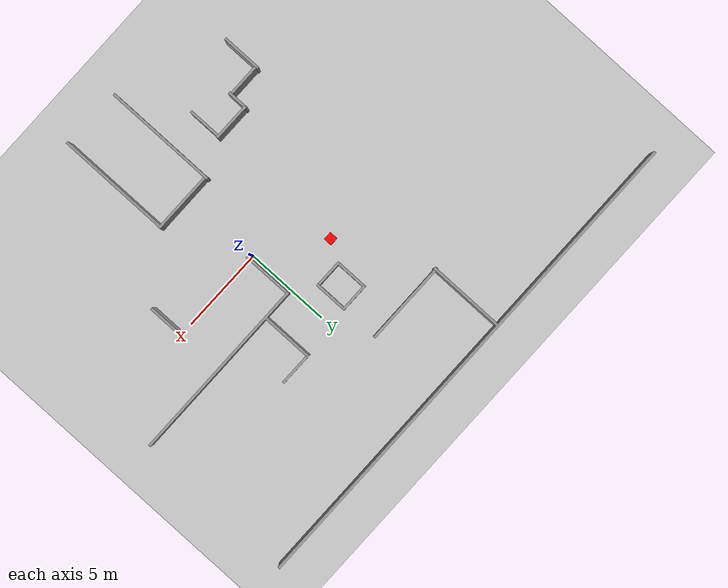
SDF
<sdf version="1.7">
 <world name="default">
  <model name="ground_plane">
   <static>1</static>
   <link name="link">
    <collision name="collision">
     <geometry><plane><normal>0 0 1</normal><size>100 100</size></plane></geometry>
     <surface>
      <contact><collide_bitmask>65535</collide_bitmask></contact>
      <friction><ode><mu>100</mu><mu2>50</mu2></ode></friction>
     </surface>
    </collision>
    <visual name="visual">
     <cast_shadows>0</cast_shadows>
     <geometry><plane><normal>0 0 1</normal><size>100 100</size></plane></geometry>
     <material>
      <script><uri>file://media/materials/scripts/gazebo.material</uri><name>Gazebo/Grey</name></script>
     </material>
    </visual>
   </link>
  </model>
  <model name="target_box">
   <pose>-3.5 2.5 0.5 0 0 0</pose>
   <link name="link">
    <collision name="collision"><geometry><box><size>0.5 0.5 0.5</size></box></geometry></collision>
    <visual name="visual">
     <geometry><box><size>0.5 0.5 0.5</size></box></geometry>
     <material><ambient>1 0 0 1</ambient><diffuse>1 0 0 1</diffuse><specular>0.5 0.5 0.5 1</specular></material>
    </visual>
   </link>
  </model>
  <model name="newwoorld">
   <link name="Wall_101">
    <pose>-0.994043 4.5629 0 0 -0 3.14159</pose>
    <visual name="Wall_101_Visual">
     <pose>0 0 1.25 0 -0 0</pose>
     <geometry><box><size>1.75 0.15 2.5</size></box></geometry>
     <material>
      <script><uri>file://media/materials/scripts/gazebo.material</uri><name>Gazebo/Grey</name></script>
      <ambient>1 1 1 1</ambient>
      <shader type="pixel"/>
     </material>
     <meta><layer>0</layer></meta>
    </visual>
    <collision name="Wall_101_Collision">
     <pose>0 0 1.25 0 -0 0</pose>
     <geometry><box><size>1.75 0.15 2.5</size></box></geometry>
     <surface>
      <friction>
       <ode><mu>1</mu><mu2>1</mu2><fdir1>0 0 0</fdir1><slip1>0</slip1><slip2>0</slip2></ode>
       <torsional>
        <coefficient>1</coefficient>
        <patch_radius>0</patch_radius>
        <surface_radius>0</surface_radius>
        <use_patch_radius>1</use_patch_radius>
        <ode><slip>0</slip></ode>
       </torsional>
      </friction>
      <bounce><restitution_coefficient>0</restitution_coefficient><threshold>1e+06</threshold></bounce>
      <contact>
       <collide_without_contact>0</collide_without_contact>
       <collide_without_contact_bitmask>1</collide_without_contact_bitmask>
       <collide_bitmask>1</collide_bitmask>
       <ode>
        <soft_cfm>0</soft_cfm>
        <soft_erp>0.2</soft_erp>
        <kp>1e+13</kp>
        <kd>1</kd>
        <max_vel>0.01</max_vel>
        <min_depth>0</min_depth>
       </ode>
       <bullet>
        <split_impulse>1</split_impulse>
        <split_impulse_penetration_threshold>-0.01</split_impulse_penetration_threshold>
        <soft_cfm>0</soft_cfm>
        <soft_erp>0.2</soft_erp>
        <kp>1e+13</kp>
        <kd>1</kd>
       </bullet>
      </contact>
     </surface>
    </collision>
   </link>
   <link name="Wall_104">
    <pose>-0.194043 3.6379 0 0 0 -1.5708</pose>
    <visual name="Wall_104_Visual">
     <pose>0 0 1.25 0 -0 0</pose>
     <geometry><box><size>2 0.15 2.5</size></box></geometry>
     <material>
      <script><uri>file://media/materials/scripts/gazebo.material</uri><name>Gazebo/Grey</name></script>
      <ambient>1 1 1 1</ambient>
      <shader type="pixel"/>
     </material>
     <meta><layer>0</layer></meta>
    </visual>
    <collision name="Wall_104_Collision">
     <pose>0 0 1.25 0 -0 0</pose>
     <geometry><box><size>2 0.15 2.5</size></box></geometry>
     <surface>
      <friction>
       <ode><mu>1</mu><mu2>1</mu2><fdir1>0 0 0</fdir1><slip1>0</slip1><slip2>0</slip2></ode>
       <torsional>
        <coefficient>1</coefficient>
        <patch_radius>0</patch_radius>
        <surface_radius>0</surface_radius>
        <use_patch_radius>1</use_patch_radius>
        <ode><slip>0</slip></ode>
       </torsional>
      </friction>
      <bounce><restitution_coefficient>0</restitution_coefficient><threshold>1e+06</threshold></bounce>
      <contact>
       <collide_without_contact>0</collide_without_contact>
       <collide_without_contact_bitmask>1</collide_without_contact_bitmask>
       <collide_bitmask>1</collide_bitmask>
       <ode>
        <soft_cfm>0</soft_cfm>
        <soft_erp>0.2</soft_erp>
        <kp>1e+13</kp>
        <kd>1</kd>
        <max_vel>0.01</max_vel>
        <min_depth>0</min_depth>
       </ode>
       <bullet>
        <split_impulse>1</split_impulse>
        <split_impulse_penetration_threshold>-0.01</split_impulse_penetration_threshold>
        <soft_cfm>0</soft_cfm>
        <soft_erp>0.2</soft_erp>
        <kp>1e+13</kp>
        <kd>1</kd>
       </bullet>
      </contact>
     </surface>
    </collision>
   </link>
   <link name="Wall_105">
    <pose>-0.994043 2.7129 0 0 -0 3.14159</pose>
    <visual name="Wall_105_Visual">
     <pose>0 0 1.25 0 -0 0</pose>
     <geometry><box><size>1.75 0.15 2.5</size></box></geometry>
     <material>
      <script><uri>file://media/materials/scripts/gazebo.material</uri><name>Gazebo/Grey</name></script>
      <ambient>1 1 1 1</ambient>
      <shader type="pixel"/>
     </material>
     <meta><layer>0</layer></meta>
    </visual>
    <collision name="Wall_105_Collision">
     <pose>0 0 1.25 0 -0 0</pose>
     <geometry><box><size>1.75 0.15 2.5</size></box></geometry>
     <surface>
      <friction>
       <ode><mu>1</mu><mu2>1</mu2><fdir1>0 0 0</fdir1><slip1>0</slip1><slip2>0</slip2></ode>
       <torsional>
        <coefficient>1</coefficient>
        <patch_radius>0</patch_radius>
        <surface_radius>0</surface_radius>
        <use_patch_radius>1</use_patch_radius>
        <ode><slip>0</slip></ode>
       </torsional>
      </friction>
      <bounce><restitution_coefficient>0</restitution_coefficient><threshold>1e+06</threshold></bounce>
      <contact>
       <collide_without_contact>0</collide_without_contact>
       <collide_without_contact_bitmask>1</collide_without_contact_bitmask>
       <collide_bitmask>1</collide_bitmask>
       <ode>
        <soft_cfm>0</soft_cfm>
        <soft_erp>0.2</soft_erp>
        <kp>1e+13</kp>
        <kd>1</kd>
        <max_vel>0.01</max_vel>
        <min_depth>0</min_depth>
       </ode>
       <bullet>
        <split_impulse>1</split_impulse>
        <split_impulse_penetration_threshold>-0.01</split_impulse_penetration_threshold>
        <soft_cfm>0</soft_cfm>
        <soft_erp>0.2</soft_erp>
        <kp>1e+13</kp>
        <kd>1</kd>
       </bullet>
      </contact>
     </surface>
    </collision>
   </link>
   <link name="Wall_106">
    <pose>-1.79404 3.6379 0 0 -0 1.5708</pose>
    <visual name="Wall_106_Visual">
     <pose>0 0 1.25 0 -0 0</pose>
     <geometry><box><size>2 0.15 2.5</size></box></geometry>
     <material>
      <script><uri>file://media/materials/scripts/gazebo.material</uri><name>Gazebo/Grey</name></script>
      <ambient>1 1 1 1</ambient>
      <shader type="pixel"/>
     </material>
     <meta><layer>0</layer></meta>
    </visual>
    <collision name="Wall_106_Collision">
     <pose>0 0 1.25 0 -0 0</pose>
     <geometry><box><size>2 0.15 2.5</size></box></geometry>
     <surface>
      <friction>
       <ode><mu>1</mu><mu2>1</mu2><fdir1>0 0 0</fdir1><slip1>0</slip1><slip2>0</slip2></ode>
       <torsional>
        <coefficient>1</coefficient>
        <patch_radius>0</patch_radius>
        <surface_radius>0</surface_radius>
        <use_patch_radius>1</use_patch_radius>
        <ode><slip>0</slip></ode>
       </torsional>
      </friction>
      <bounce><restitution_coefficient>0</restitution_coefficient><threshold>1e+06</threshold></bounce>
      <contact>
       <collide_without_contact>0</collide_without_contact>
       <collide_without_contact_bitmask>1</collide_without_contact_bitmask>
       <collide_bitmask>1</collide_bitmask>
       <ode>
        <soft_cfm>0</soft_cfm>
        <soft_erp>0.2</soft_erp>
        <kp>1e+13</kp>
        <kd>1</kd>
        <max_vel>0.01</max_vel>
        <min_depth>0</min_depth>
       </ode>
       <bullet>
        <split_impulse>1</split_impulse>
        <split_impulse_penetration_threshold>-0.01</split_impulse_penetration_threshold>
        <soft_cfm>0</soft_cfm>
        <soft_erp>0.2</soft_erp>
        <kp>1e+13</kp>
        <kd>1</kd>
       </bullet>
      </contact>
     </surface>
    </collision>
   </link>
   <link name="Wall_124">
    <pose>6.64457 -2.03412 0 0 0 -1.5708</pose>
    <visual name="Wall_124_Visual">
     <pose>0 0 1.25 0 -0 0</pose>
     <geometry><box><size>2 0.15 2.5</size></box></geometry>
     <material>
      <script><uri>file://media/materials/scripts/gazebo.material</uri><name>Gazebo/Grey</name></script>
      <ambient>1 1 1 1</ambient>
      <shader type="pixel"/>
     </material>
     <meta><layer>0</layer></meta>
    </visual>
    <collision name="Wall_124_Collision">
     <pose>0 0 1.25 0 -0 0</pose>
     <geometry><box><size>2 0.15 2.5</size></box></geometry>
     <surface>
      <friction>
       <ode><mu>1</mu><mu2>1</mu2><fdir1>0 0 0</fdir1><slip1>0</slip1><slip2>0</slip2></ode>
       <torsional>
        <coefficient>1</coefficient>
        <patch_radius>0</patch_radius>
        <surface_radius>0</surface_radius>
        <use_patch_radius>1</use_patch_radius>
        <ode><slip>0</slip></ode>
       </torsional>
      </friction>
      <bounce><restitution_coefficient>0</restitution_coefficient><threshold>1e+06</threshold></bounce>
      <contact>
       <collide_without_contact>0</collide_without_contact>
       <collide_without_contact_bitmask>1</collide_without_contact_bitmask>
       <collide_bitmask>1</collide_bitmask>
       <ode>
        <soft_cfm>0</soft_cfm>
        <soft_erp>0.2</soft_erp>
        <kp>1e+13</kp>
        <kd>1</kd>
        <max_vel>0.01</max_vel>
        <min_depth>0</min_depth>
       </ode>
       <bullet>
        <split_impulse>1</split_impulse>
        <split_impulse_penetration_threshold>-0.01</split_impulse_penetration_threshold>
        <soft_cfm>0</soft_cfm>
        <soft_erp>0.2</soft_erp>
        <kp>1e+13</kp>
        <kd>1</kd>
       </bullet>
      </contact>
     </surface>
    </collision>
   </link>
   <link name="Wall_137">
    <pose>-4.6097 -7.02476 0 0 -0 1.5708</pose>
    <visual name="Wall_137_Visual">
     <pose>0 0 1.25 0 -0 0</pose>
     <geometry><box><size>1.25 0.15 2.5</size></box></geometry>
     <material>
      <script><uri>file://media/materials/scripts/gazebo.material</uri><name>Gazebo/Grey</name></script>
      <ambient>1 1 1 1</ambient>
      <shader type="pixel"/>
     </material>
     <meta><layer>0</layer></meta>
    </visual>
    <collision name="Wall_137_Collision">
     <pose>0 0 1.25 0 -0 0</pose>
     <geometry><box><size>1.25 0.15 2.5</size></box></geometry>
     <surface>
      <friction>
       <ode><mu>1</mu><mu2>1</mu2><fdir1>0 0 0</fdir1><slip1>0</slip1><slip2>0</slip2></ode>
       <torsional>
        <coefficient>1</coefficient>
        <patch_radius>0</patch_radius>
        <surface_radius>0</surface_radius>
        <use_patch_radius>1</use_patch_radius>
        <ode><slip>0</slip></ode>
       </torsional>
      </friction>
      <bounce><restitution_coefficient>0</restitution_coefficient><threshold>1e+06</threshold></bounce>
      <contact>
       <collide_without_contact>0</collide_without_contact>
       <collide_without_contact_bitmask>1</collide_without_contact_bitmask>
       <collide_bitmask>1</collide_bitmask>
       <ode>
        <soft_cfm>0</soft_cfm>
        <soft_erp>0.2</soft_erp>
        <kp>1e+13</kp>
        <kd>1</kd>
        <max_vel>0.01</max_vel>
        <min_depth>0</min_depth>
       </ode>
       <bullet>
        <split_impulse>1</split_impulse>
        <split_impulse_penetration_threshold>-0.01</split_impulse_penetration_threshold>
        <soft_cfm>0</soft_cfm>
        <soft_erp>0.2</soft_erp>
        <kp>1e+13</kp>
        <kd>1</kd>
       </bullet>
      </contact>
     </surface>
    </collision>
   </link>
   <link name="Wall_138">
    <pose>-3.52263 -6.50901 0 0 -0 0</pose>
    <visual name="Wall_138_Visual">
     <pose>0 0 1.25 0 -0 0</pose>
     <geometry><box><size>2.25 0.15 2.5</size></box></geometry>
     <material>
      <script><uri>file://media/materials/scripts/gazebo.material</uri><name>Gazebo/Grey</name></script>
      <ambient>1 1 1 1</ambient>
      <shader type="pixel"/>
     </material>
     <meta><layer>0</layer></meta>
    </visual>
    <collision name="Wall_138_Collision">
     <pose>0 0 1.25 0 -0 0</pose>
     <geometry><box><size>2.25 0.15 2.5</size></box></geometry>
     <surface>
      <friction>
       <ode><mu>1</mu><mu2>1</mu2><fdir1>0 0 0</fdir1><slip1>0</slip1><slip2>0</slip2></ode>
       <torsional>
        <coefficient>1</coefficient>
        <patch_radius>0</patch_radius>
        <surface_radius>0</surface_radius>
        <use_patch_radius>1</use_patch_radius>
        <ode><slip>0</slip></ode>
       </torsional>
      </friction>
      <bounce><restitution_coefficient>0</restitution_coefficient><threshold>1e+06</threshold></bounce>
      <contact>
       <collide_without_contact>0</collide_without_contact>
       <collide_without_contact_bitmask>1</collide_without_contact_bitmask>
       <collide_bitmask>1</collide_bitmask>
       <ode>
        <soft_cfm>0</soft_cfm>
        <soft_erp>0.2</soft_erp>
        <kp>1e+13</kp>
        <kd>1</kd>
        <max_vel>0.01</max_vel>
        <min_depth>0</min_depth>
       </ode>
       <bullet>
        <split_impulse>1</split_impulse>
        <split_impulse_penetration_threshold>-0.01</split_impulse_penetration_threshold>
        <soft_cfm>0</soft_cfm>
        <soft_erp>0.2</soft_erp>
        <kp>1e+13</kp>
        <kd>1</kd>
       </bullet>
      </contact>
     </surface>
    </collision>
   </link>
   <link name="Wall_139">
    <pose>-2.51043 -7.50139 0 0 0 -1.5708</pose>
    <inertial>
     <inertia><ixx>0</ixx><ixy>0</ixy><ixz>0</ixz><iyy>0</iyy><iyz>0</iyz><izz>0</izz></inertia>
     <mass>0</mass>
    </inertial>
    <visual name="Wall_139_Visual">
     <pose>0 0 1.25 0 -0 0</pose>
     <geometry><box><size>1.94256 0.15 2.5</size></box></geometry>
     <material>
      <script><uri>file://media/materials/scripts/gazebo.material</uri><name>Gazebo/Grey</name></script>
      <ambient>1 1 1 1</ambient>
      <shader type="pixel"/>
     </material>
     <meta><layer>0</layer></meta>
    </visual>
    <collision name="Wall_139_Collision">
     <pose>0 0 1.25 0 -0 0</pose>
     <geometry><box><size>1.94256 0.15 2.5</size></box></geometry>
     <surface>
      <friction>
       <ode><mu>1</mu><mu2>1</mu2><fdir1>0 0 0</fdir1><slip1>0</slip1><slip2>0</slip2></ode>
       <torsional>
        <coefficient>1</coefficient>
        <patch_radius>0</patch_radius>
        <surface_radius>0</surface_radius>
        <use_patch_radius>1</use_patch_radius>
        <ode><slip>0</slip></ode>
       </torsional>
      </friction>
      <bounce><restitution_coefficient>0</restitution_coefficient><threshold>1e+06</threshold></bounce>
      <contact>
       <collide_without_contact>0</collide_without_contact>
       <collide_without_contact_bitmask>1</collide_without_contact_bitmask>
       <collide_bitmask>1</collide_bitmask>
       <ode>
        <soft_cfm>0</soft_cfm>
        <soft_erp>0.2</soft_erp>
        <kp>1e+13</kp>
        <kd>1</kd>
        <max_vel>0.01</max_vel>
        <min_depth>0</min_depth>
       </ode>
       <bullet>
        <split_impulse>1</split_impulse>
        <split_impulse_penetration_threshold>-0.01</split_impulse_penetration_threshold>
        <soft_cfm>0</soft_cfm>
        <soft_erp>0.2</soft_erp>
        <kp>1e+13</kp>
        <kd>1</kd>
       </bullet>
      </contact>
     </surface>
    </collision>
   </link>
   <link name="Wall_17">
    <pose>-2.56748 11.2292 0 0 -0 3.14159</pose>
    <visual name="Wall_17_Visual">
     <pose>0 0 1.25 0 -0 0</pose>
     <geometry><box><size>29.75 0.15 2.5</size></box></geometry>
     <material>
      <script><uri>file://media/materials/scripts/gazebo.material</uri><name>Gazebo/Grey</name></script>
      <ambient>1 1 1 1</ambient>
      <shader type="pixel"/>
     </material>
     <meta><layer>0</layer></meta>
    </visual>
    <collision name="Wall_17_Collision">
     <pose>0 0 1.25 0 -0 0</pose>
     <geometry><box><size>29.75 0.15 2.5</size></box></geometry>
     <surface>
      <friction>
       <ode><mu>1</mu><mu2>1</mu2><fdir1>0 0 0</fdir1><slip1>0</slip1><slip2>0</slip2></ode>
       <torsional>
        <coefficient>1</coefficient>
        <patch_radius>0</patch_radius>
        <surface_radius>0</surface_radius>
        <use_patch_radius>1</use_patch_radius>
        <ode><slip>0</slip></ode>
       </torsional>
      </friction>
      <bounce><restitution_coefficient>0</restitution_coefficient><threshold>1e+06</threshold></bounce>
      <contact>
       <collide_without_contact>0</collide_without_contact>
       <collide_without_contact_bitmask>1</collide_without_contact_bitmask>
       <collide_bitmask>1</collide_bitmask>
       <ode>
        <soft_cfm>0</soft_cfm>
        <soft_erp>0.2</soft_erp>
        <kp>1e+13</kp>
        <kd>1</kd>
        <max_vel>0.01</max_vel>
        <min_depth>0</min_depth>
       </ode>
       <bullet>
        <split_impulse>1</split_impulse>
        <split_impulse_penetration_threshold>-0.01</split_impulse_penetration_threshold>
        <soft_cfm>0</soft_cfm>
        <soft_erp>0.2</soft_erp>
        <kp>1e+13</kp>
        <kd>1</kd>
       </bullet>
      </contact>
     </surface>
    </collision>
   </link>
   <link name="Wall_25">
    <pose>-0.443123 -8.77584 0 0 -0 1.5708</pose>
    <inertial>
     <inertia><ixx>0</ixx><ixy>0</ixy><ixz>0</ixz><iyy>0</iyy><iyz>0</iyz><izz>0</izz></inertia>
     <mass>0</mass>
    </inertial>
    <visual name="Wall_25_Visual">
     <pose>0 0 1.25 0 -0 0</pose>
     <geometry><box><size>6.69625 0.15 2.5</size></box></geometry>
     <material>
      <script><uri>file://media/materials/scripts/gazebo.material</uri><name>Gazebo/Grey</name></script>
      <ambient>1 1 1 1</ambient>
      <shader type="pixel"/>
     </material>
     <meta><layer>0</layer></meta>
    </visual>
    <collision name="Wall_25_Collision">
     <pose>0 0 1.25 0 -0 0</pose>
     <geometry><box><size>6.69625 0.15 2.5</size></box></geometry>
     <surface>
      <friction>
       <ode><mu>1</mu><mu2>1</mu2><fdir1>0 0 0</fdir1><slip1>0</slip1><slip2>0</slip2></ode>
       <torsional>
        <coefficient>1</coefficient>
        <patch_radius>0</patch_radius>
        <surface_radius>0</surface_radius>
        <use_patch_radius>1</use_patch_radius>
        <ode><slip>0</slip></ode>
       </torsional>
      </friction>
      <bounce><restitution_coefficient>0</restitution_coefficient><threshold>1e+06</threshold></bounce>
      <contact>
       <collide_without_contact>0</collide_without_contact>
       <collide_without_contact_bitmask>1</collide_without_contact_bitmask>
       <collide_bitmask>1</collide_bitmask>
       <ode>
        <soft_cfm>0</soft_cfm>
        <soft_erp>0.2</soft_erp>
        <kp>1e+13</kp>
        <kd>1</kd>
        <max_vel>0.01</max_vel>
        <min_depth>0</min_depth>
       </ode>
       <bullet>
        <split_impulse>1</split_impulse>
        <split_impulse_penetration_threshold>-0.01</split_impulse_penetration_threshold>
        <soft_cfm>0</soft_cfm>
        <soft_erp>0.2</soft_erp>
        <kp>1e+13</kp>
        <kd>1</kd>
       </bullet>
      </contact>
     </surface>
    </collision>
   </link>
   <link name="Wall_26">
    <pose>1.3447 -5.57207 0 0 -0 0</pose>
    <visual name="Wall_26_Visual">
     <pose>0 0 1.25 0 -0 0</pose>
     <geometry><box><size>3.75 0.15 2.5</size></box></geometry>
     <material>
      <script><uri>file://media/materials/scripts/gazebo.material</uri><name>Gazebo/Grey</name></script>
      <ambient>1 1 1 1</ambient>
      <shader type="pixel"/>
     </material>
     <meta><layer>0</layer></meta>
    </visual>
    <collision name="Wall_26_Collision">
     <pose>0 0 1.25 0 -0 0</pose>
     <geometry><box><size>3.75 0.15 2.5</size></box></geometry>
     <surface>
      <friction>
       <ode><mu>1</mu><mu2>1</mu2><fdir1>0 0 0</fdir1><slip1>0</slip1><slip2>0</slip2></ode>
       <torsional>
        <coefficient>1</coefficient>
        <patch_radius>0</patch_radius>
        <surface_radius>0</surface_radius>
        <use_patch_radius>1</use_patch_radius>
        <ode><slip>0</slip></ode>
       </torsional>
      </friction>
      <bounce><restitution_coefficient>0</restitution_coefficient><threshold>1e+06</threshold></bounce>
      <contact>
       <collide_without_contact>0</collide_without_contact>
       <collide_without_contact_bitmask>1</collide_without_contact_bitmask>
       <collide_bitmask>1</collide_bitmask>
       <ode>
        <soft_cfm>0</soft_cfm>
        <soft_erp>0.2</soft_erp>
        <kp>1e+13</kp>
        <kd>1</kd>
        <max_vel>0.01</max_vel>
        <min_depth>0</min_depth>
       </ode>
       <bullet>
        <split_impulse>1</split_impulse>
        <split_impulse_penetration_threshold>-0.01</split_impulse_penetration_threshold>
        <soft_cfm>0</soft_cfm>
        <soft_erp>0.2</soft_erp>
        <kp>1e+13</kp>
        <kd>1</kd>
       </bullet>
      </contact>
     </surface>
    </collision>
   </link>
   <link name="Wall_27">
    <pose>3.11878 -8.86214 0 0 0 -1.5708</pose>
    <inertial>
     <inertia><ixx>0</ixx><ixy>0</ixy><ixz>0</ixz><iyy>0</iyy><iyz>0</iyz><izz>0</izz></inertia>
     <mass>0</mass>
    </inertial>
    <visual name="Wall_27_Visual">
     <pose>0 0 1.25 0 -0 0</pose>
     <geometry><box><size>6.77124 0.15 2.5</size></box></geometry>
     <material>
      <script><uri>file://media/materials/scripts/gazebo.material</uri><name>Gazebo/Grey</name></script>
      <ambient>1 1 1 1</ambient>
      <shader type="pixel"/>
     </material>
     <meta><layer>0</layer></meta>
    </visual>
    <collision name="Wall_27_Collision">
     <pose>0 0 1.25 0 -0 0</pose>
     <geometry><box><size>6.77124 0.15 2.5</size></box></geometry>
     <surface>
      <friction>
       <ode><mu>1</mu><mu2>1</mu2><fdir1>0 0 0</fdir1><slip1>0</slip1><slip2>0</slip2></ode>
       <torsional>
        <coefficient>1</coefficient>
        <patch_radius>0</patch_radius>
        <surface_radius>0</surface_radius>
        <use_patch_radius>1</use_patch_radius>
        <ode><slip>0</slip></ode>
       </torsional>
      </friction>
      <bounce><restitution_coefficient>0</restitution_coefficient><threshold>1e+06</threshold></bounce>
      <contact>
       <collide_without_contact>0</collide_without_contact>
       <collide_without_contact_bitmask>1</collide_without_contact_bitmask>
       <collide_bitmask>1</collide_bitmask>
       <ode>
        <soft_cfm>0</soft_cfm>
        <soft_erp>0.2</soft_erp>
        <kp>1e+13</kp>
        <kd>1</kd>
        <max_vel>0.01</max_vel>
        <min_depth>0</min_depth>
       </ode>
       <bullet>
        <split_impulse>1</split_impulse>
        <split_impulse_penetration_threshold>-0.01</split_impulse_penetration_threshold>
        <soft_cfm>0</soft_cfm>
        <soft_erp>0.2</soft_erp>
        <kp>1e+13</kp>
        <kd>1</kd>
       </bullet>
      </contact>
     </surface>
    </collision>
   </link>
   <link name="Wall_57">
    <pose>-6.59488 -8.55126 0 0 -0 1.5708</pose>
    <inertial>
     <inertia><ixx>0</ixx><ixy>0</ixy><ixz>0</ixz><iyy>0</iyy><iyz>0</iyz><izz>0</izz></inertia>
     <mass>0</mass>
    </inertial>
    <visual name="Wall_57_Visual">
     <pose>0 0 1.25 0 -0 0</pose>
     <geometry><box><size>2.3509 0.15 2.5</size></box></geometry>
     <material>
      <script><uri>file://media/materials/scripts/gazebo.material</uri><name>Gazebo/Grey</name></script>
      <ambient>1 1 1 1</ambient>
      <shader type="pixel"/>
     </material>
     <meta><layer>0</layer></meta>
    </visual>
    <collision name="Wall_57_Collision">
     <pose>0 0 1.25 0 -0 0</pose>
     <geometry><box><size>2.3509 0.15 2.5</size></box></geometry>
     <surface>
      <friction>
       <ode><mu>1</mu><mu2>1</mu2><fdir1>0 0 0</fdir1><slip1>0</slip1><slip2>0</slip2></ode>
       <torsional>
        <coefficient>1</coefficient>
        <patch_radius>0</patch_radius>
        <surface_radius>0</surface_radius>
        <use_patch_radius>1</use_patch_radius>
        <ode><slip>0</slip></ode>
       </torsional>
      </friction>
      <bounce><restitution_coefficient>0</restitution_coefficient><threshold>1e+06</threshold></bounce>
      <contact>
       <collide_without_contact>0</collide_without_contact>
       <collide_without_contact_bitmask>1</collide_without_contact_bitmask>
       <collide_bitmask>1</collide_bitmask>
       <ode>
        <soft_cfm>0</soft_cfm>
        <soft_erp>0.2</soft_erp>
        <kp>1e+13</kp>
        <kd>1</kd>
        <max_vel>0.01</max_vel>
        <min_depth>0</min_depth>
       </ode>
       <bullet>
        <split_impulse>1</split_impulse>
        <split_impulse_penetration_threshold>-0.01</split_impulse_penetration_threshold>
        <soft_cfm>0</soft_cfm>
        <soft_erp>0.2</soft_erp>
        <kp>1e+13</kp>
        <kd>1</kd>
       </bullet>
      </contact>
     </surface>
    </collision>
   </link>
   <link name="Wall_58">
    <pose>-5.57665 -7.5118 0 0 -0 0</pose>
    <inertial>
     <inertia><ixx>0</ixx><ixy>0</ixy><ixz>0</ixz><iyy>0</iyy><iyz>0</iyz><izz>0</izz></inertia>
     <mass>0</mass>
    </inertial>
    <visual name="Wall_58_Visual">
     <pose>0 0 1.25 0 -0 0</pose>
     <geometry><box><size>2.06521 0.15 2.5</size></box></geometry>
     <material>
      <script><uri>file://media/materials/scripts/gazebo.material</uri><name>Gazebo/Grey</name></script>
      <ambient>1 1 1 1</ambient>
      <shader type="pixel"/>
     </material>
     <meta><layer>0</layer></meta>
    </visual>
    <collision name="Wall_58_Collision">
     <pose>0 0 1.25 0 -0 0</pose>
     <geometry><box><size>2.06521 0.15 2.5</size></box></geometry>
     <surface>
      <friction>
       <ode><mu>1</mu><mu2>1</mu2><fdir1>0 0 0</fdir1><slip1>0</slip1><slip2>0</slip2></ode>
       <torsional>
        <coefficient>1</coefficient>
        <patch_radius>0</patch_radius>
        <surface_radius>0</surface_radius>
        <use_patch_radius>1</use_patch_radius>
        <ode><slip>0</slip></ode>
       </torsional>
      </friction>
      <bounce><restitution_coefficient>0</restitution_coefficient><threshold>1e+06</threshold></bounce>
      <contact>
       <collide_without_contact>0</collide_without_contact>
       <collide_without_contact_bitmask>1</collide_without_contact_bitmask>
       <collide_bitmask>1</collide_bitmask>
       <ode>
        <soft_cfm>0</soft_cfm>
        <soft_erp>0.2</soft_erp>
        <kp>1e+13</kp>
        <kd>1</kd>
        <max_vel>0.01</max_vel>
        <min_depth>0</min_depth>
       </ode>
       <bullet>
        <split_impulse>1</split_impulse>
        <split_impulse_penetration_threshold>-0.01</split_impulse_penetration_threshold>
        <soft_cfm>0</soft_cfm>
        <soft_erp>0.2</soft_erp>
        <kp>1e+13</kp>
        <kd>1</kd>
       </bullet>
      </contact>
     </surface>
    </collision>
   </link>
   <link name="Wall_76">
    <pose>-5.01594 8.91192 0 0 0 -1.5708</pose>
    <inertial>
     <inertia><ixx>0</ixx><ixy>0</ixy><ixz>0</ixz><iyy>0</iyy><iyz>0</iyz><izz>0</izz></inertia>
     <mass>0</mass>
    </inertial>
    <visual name="Wall_76_Visual">
     <pose>0 0 1.25 0 -0 0</pose>
     <geometry><box><size>4.50821 0.15 2.5</size></box></geometry>
     <material>
      <script><uri>file://media/materials/scripts/gazebo.material</uri><name>Gazebo/Grey</name></script>
      <ambient>1 1 1 1</ambient>
      <shader type="pixel"/>
     </material>
     <meta><layer>0</layer></meta>
    </visual>
    <collision name="Wall_76_Collision">
     <pose>0 0 1.25 0 -0 0</pose>
     <geometry><box><size>4.50821 0.15 2.5</size></box></geometry>
     <surface>
      <friction>
       <ode><mu>1</mu><mu2>1</mu2><fdir1>0 0 0</fdir1><slip1>0</slip1><slip2>0</slip2></ode>
       <torsional>
        <coefficient>1</coefficient>
        <patch_radius>0</patch_radius>
        <surface_radius>0</surface_radius>
        <use_patch_radius>1</use_patch_radius>
        <ode><slip>0</slip></ode>
       </torsional>
      </friction>
      <bounce><restitution_coefficient>0</restitution_coefficient><threshold>1e+06</threshold></bounce>
      <contact>
       <collide_without_contact>0</collide_without_contact>
       <collide_without_contact_bitmask>1</collide_without_contact_bitmask>
       <collide_bitmask>1</collide_bitmask>
       <ode>
        <soft_cfm>0</soft_cfm>
        <soft_erp>0.2</soft_erp>
        <kp>1e+13</kp>
        <kd>1</kd>
        <max_vel>0.01</max_vel>
        <min_depth>0</min_depth>
       </ode>
       <bullet>
        <split_impulse>1</split_impulse>
        <split_impulse_penetration_threshold>-0.01</split_impulse_penetration_threshold>
        <soft_cfm>0</soft_cfm>
        <soft_erp>0.2</soft_erp>
        <kp>1e+13</kp>
        <kd>1</kd>
       </bullet>
      </contact>
     </surface>
    </collision>
   </link>
   <link name="Wall_77">
    <pose>-2.63653 6.78448 0 0 -0 0</pose>
    <visual name="Wall_77_Visual">
     <pose>0 0 1.25 0 -0 0</pose>
     <geometry><box><size>5 0.15 2.5</size></box></geometry>
     <material>
      <script><uri>file://media/materials/scripts/gazebo.material</uri><name>Gazebo/Grey</name></script>
      <ambient>1 1 1 1</ambient>
      <shader type="pixel"/>
     </material>
     <meta><layer>0</layer></meta>
    </visual>
    <collision name="Wall_77_Collision">
     <pose>0 0 1.25 0 -0 0</pose>
     <geometry><box><size>5 0.15 2.5</size></box></geometry>
     <surface>
      <friction>
       <ode><mu>1</mu><mu2>1</mu2><fdir1>0 0 0</fdir1><slip1>0</slip1><slip2>0</slip2></ode>
       <torsional>
        <coefficient>1</coefficient>
        <patch_radius>0</patch_radius>
        <surface_radius>0</surface_radius>
        <use_patch_radius>1</use_patch_radius>
        <ode><slip>0</slip></ode>
       </torsional>
      </friction>
      <bounce><restitution_coefficient>0</restitution_coefficient><threshold>1e+06</threshold></bounce>
      <contact>
       <collide_without_contact>0</collide_without_contact>
       <collide_without_contact_bitmask>1</collide_without_contact_bitmask>
       <collide_bitmask>1</collide_bitmask>
       <ode>
        <soft_cfm>0</soft_cfm>
        <soft_erp>0.2</soft_erp>
        <kp>1e+13</kp>
        <kd>1</kd>
        <max_vel>0.01</max_vel>
        <min_depth>0</min_depth>
       </ode>
       <bullet>
        <split_impulse>1</split_impulse>
        <split_impulse_penetration_threshold>-0.01</split_impulse_penetration_threshold>
        <soft_cfm>0</soft_cfm>
        <soft_erp>0.2</soft_erp>
        <kp>1e+13</kp>
        <kd>1</kd>
       </bullet>
      </contact>
     </surface>
    </collision>
   </link>
   <link name="Wall_87">
    <pose>6.63229 1.79483 0 0 -0 3.14159</pose>
    <visual name="Wall_87_Visual">
     <pose>0 0 1.25 0 -0 0</pose>
     <geometry><box><size>11 0.15 2.5</size></box></geometry>
     <material>
      <script><uri>file://media/materials/scripts/gazebo.material</uri><name>Gazebo/Grey</name></script>
      <ambient>1 1 1 1</ambient>
      <shader type="pixel"/>
     </material>
     <meta><layer>0</layer></meta>
    </visual>
    <collision name="Wall_87_Collision">
     <pose>0 0 1.25 0 -0 0</pose>
     <geometry><box><size>11 0.15 2.5</size></box></geometry>
     <surface>
      <friction>
       <ode><mu>1</mu><mu2>1</mu2><fdir1>0 0 0</fdir1><slip1>0</slip1><slip2>0</slip2></ode>
       <torsional>
        <coefficient>1</coefficient>
        <patch_radius>0</patch_radius>
        <surface_radius>0</surface_radius>
        <use_patch_radius>1</use_patch_radius>
        <ode><slip>0</slip></ode>
       </torsional>
      </friction>
      <bounce><restitution_coefficient>0</restitution_coefficient><threshold>1e+06</threshold></bounce>
      <contact>
       <collide_without_contact>0</collide_without_contact>
       <collide_without_contact_bitmask>1</collide_without_contact_bitmask>
       <collide_bitmask>1</collide_bitmask>
       <ode>
        <soft_cfm>0</soft_cfm>
        <soft_erp>0.2</soft_erp>
        <kp>1e+13</kp>
        <kd>1</kd>
        <max_vel>0.01</max_vel>
        <min_depth>0</min_depth>
       </ode>
       <bullet>
        <split_impulse>1</split_impulse>
        <split_impulse_penetration_threshold>-0.01</split_impulse_penetration_threshold>
        <soft_cfm>0</soft_cfm>
        <soft_erp>0.2</soft_erp>
        <kp>1e+13</kp>
        <kd>1</kd>
       </bullet>
      </contact>
     </surface>
    </collision>
   </link>
   <link name="Wall_88">
    <pose>1.20729 0.369826 0 0 0 -1.5708</pose>
    <visual name="Wall_88_Visual">
     <pose>0 0 1.25 0 -0 0</pose>
     <geometry><box><size>3 0.15 2.5</size></box></geometry>
     <material>
      <script><uri>file://media/materials/scripts/gazebo.material</uri><name>Gazebo/Grey</name></script>
      <ambient>1 1 1 1</ambient>
      <shader type="pixel"/>
     </material>
     <meta><layer>0</layer></meta>
    </visual>
    <collision name="Wall_88_Collision">
     <pose>0 0 1.25 0 -0 0</pose>
     <geometry><box><size>3 0.15 2.5</size></box></geometry>
     <surface>
      <friction>
       <ode><mu>1</mu><mu2>1</mu2><fdir1>0 0 0</fdir1><slip1>0</slip1><slip2>0</slip2></ode>
       <torsional>
        <coefficient>1</coefficient>
        <patch_radius>0</patch_radius>
        <surface_radius>0</surface_radius>
        <use_patch_radius>1</use_patch_radius>
        <ode><slip>0</slip></ode>
       </torsional>
      </friction>
      <bounce><restitution_coefficient>0</restitution_coefficient><threshold>1e+06</threshold></bounce>
      <contact>
       <collide_without_contact>0</collide_without_contact>
       <collide_without_contact_bitmask>1</collide_without_contact_bitmask>
       <collide_bitmask>1</collide_bitmask>
       <ode>
        <soft_cfm>0</soft_cfm>
        <soft_erp>0.2</soft_erp>
        <kp>1e+13</kp>
        <kd>1</kd>
        <max_vel>0.01</max_vel>
        <min_depth>0</min_depth>
       </ode>
       <bullet>
        <split_impulse>1</split_impulse>
        <split_impulse_penetration_threshold>-0.01</split_impulse_penetration_threshold>
        <soft_cfm>0</soft_cfm>
        <soft_erp>0.2</soft_erp>
        <kp>1e+13</kp>
        <kd>1</kd>
       </bullet>
      </contact>
     </surface>
    </collision>
   </link>
   <link name="Wall_98">
    <pose>2.94495 3.30601 0 0 -0 1.5708</pose>
    <visual name="Wall_98_Visual">
     <pose>0 0 1.25 0 -0 0</pose>
     <geometry><box><size>3 0.15 2.5</size></box></geometry>
     <material>
      <script><uri>file://media/materials/scripts/gazebo.material</uri><name>Gazebo/Grey</name></script>
      <ambient>1 1 1 1</ambient>
      <shader type="pixel"/>
     </material>
     <meta><layer>0</layer></meta>
    </visual>
    <collision name="Wall_98_Collision">
     <pose>0 0 1.25 0 -0 0</pose>
     <geometry><box><size>3 0.15 2.5</size></box></geometry>
     <surface>
      <friction>
       <ode><mu>1</mu><mu2>1</mu2><fdir1>0 0 0</fdir1><slip1>0</slip1><slip2>0</slip2></ode>
       <torsional>
        <coefficient>1</coefficient>
        <patch_radius>0</patch_radius>
        <surface_radius>0</surface_radius>
        <use_patch_radius>1</use_patch_radius>
        <ode><slip>0</slip></ode>
       </torsional>
      </friction>
      <bounce><restitution_coefficient>0</restitution_coefficient><threshold>1e+06</threshold></bounce>
      <contact>
       <collide_without_contact>0</collide_without_contact>
       <collide_without_contact_bitmask>1</collide_without_contact_bitmask>
       <collide_bitmask>1</collide_bitmask>
       <ode>
        <soft_cfm>0</soft_cfm>
        <soft_erp>0.2</soft_erp>
        <kp>1e+13</kp>
        <kd>1</kd>
        <max_vel>0.01</max_vel>
        <min_depth>0</min_depth>
       </ode>
       <bullet>
        <split_impulse>1</split_impulse>
        <split_impulse_penetration_threshold>-0.01</split_impulse_penetration_threshold>
        <soft_cfm>0</soft_cfm>
        <soft_erp>0.2</soft_erp>
        <kp>1e+13</kp>
        <kd>1</kd>
       </bullet>
      </contact>
     </surface>
    </collision>
   </link>
   <link name="Wall_99">
    <pose>3.87018 4.8103 0 0 -0 0</pose>
    <visual name="Wall_99_Visual">
     <pose>0 0 1.25 0 -0 0</pose>
     <geometry><box><size>2 0.15 2.5</size></box></geometry>
     <material>
      <script><uri>file://media/materials/scripts/gazebo.material</uri><name>Gazebo/Grey</name></script>
      <ambient>1 1 1 1</ambient>
      <shader type="pixel"/>
     </material>
     <meta><layer>0</layer></meta>
    </visual>
    <collision name="Wall_99_Collision">
     <pose>0 0 1.25 0 -0 0</pose>
     <geometry><box><size>2 0.15 2.5</size></box></geometry>
     <surface>
      <friction>
       <ode><mu>1</mu><mu2>1</mu2><fdir1>0 0 0</fdir1><slip1>0</slip1><slip2>0</slip2></ode>
       <torsional>
        <coefficient>1</coefficient>
        <patch_radius>0</patch_radius>
        <surface_radius>0</surface_radius>
        <use_patch_radius>1</use_patch_radius>
        <ode><slip>0</slip></ode>
       </torsional>
      </friction>
      <bounce><restitution_coefficient>0</restitution_coefficient><threshold>1e+06</threshold></bounce>
      <contact>
       <collide_without_contact>0</collide_without_contact>
       <collide_without_contact_bitmask>1</collide_without_contact_bitmask>
       <collide_bitmask>1</collide_bitmask>
       <ode>
        <soft_cfm>0</soft_cfm>
        <soft_erp>0.2</soft_erp>
        <kp>1e+13</kp>
        <kd>1</kd>
        <max_vel>0.01</max_vel>
        <min_depth>0</min_depth>
       </ode>
       <bullet>
        <split_impulse>1</split_impulse>
        <split_impulse_penetration_threshold>-0.01</split_impulse_penetration_threshold>
        <soft_cfm>0</soft_cfm>
        <soft_erp>0.2</soft_erp>
        <kp>1e+13</kp>
        <kd>1</kd>
       </bullet>
      </contact>
     </surface>
    </collision>
   </link>
   <static>1</static>
   <pose>-0.999997 1 0 0 -0 0</pose>
  </model>
 </world>
</sdf>
